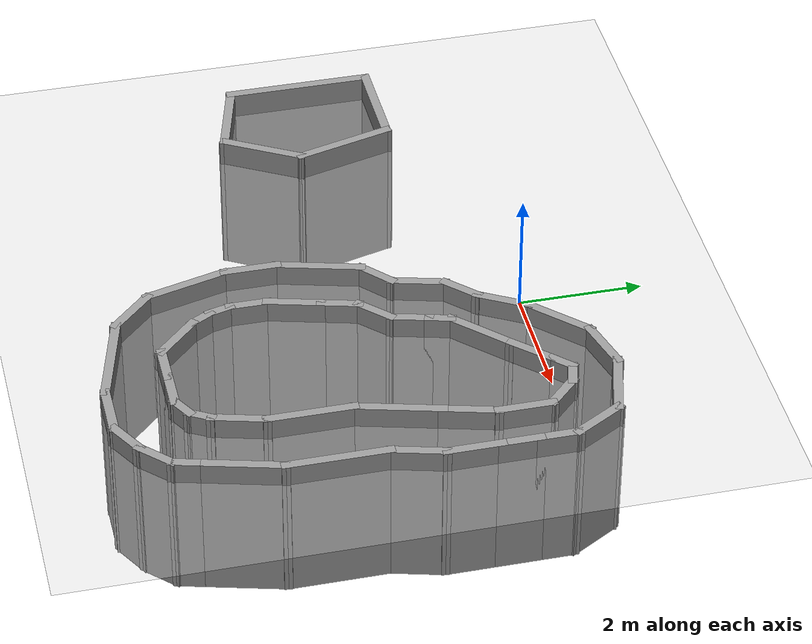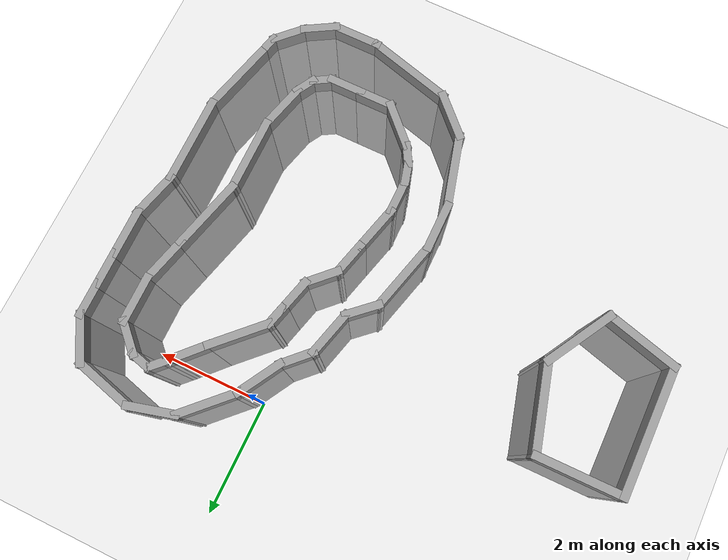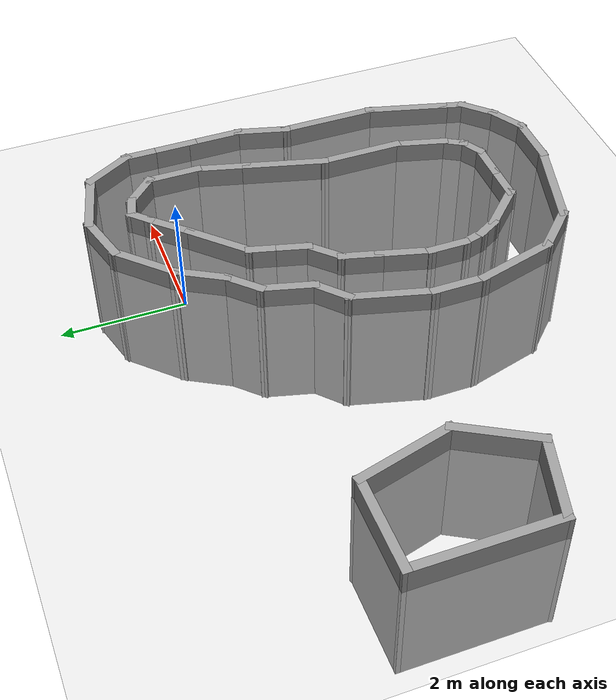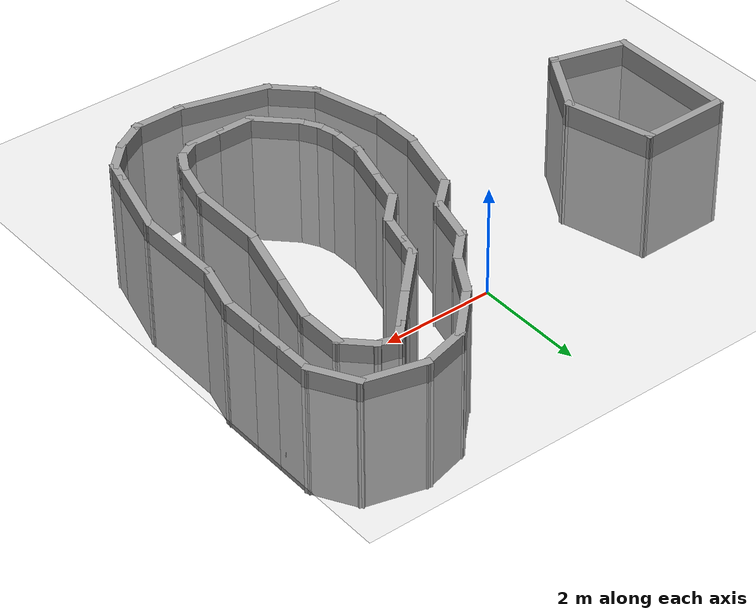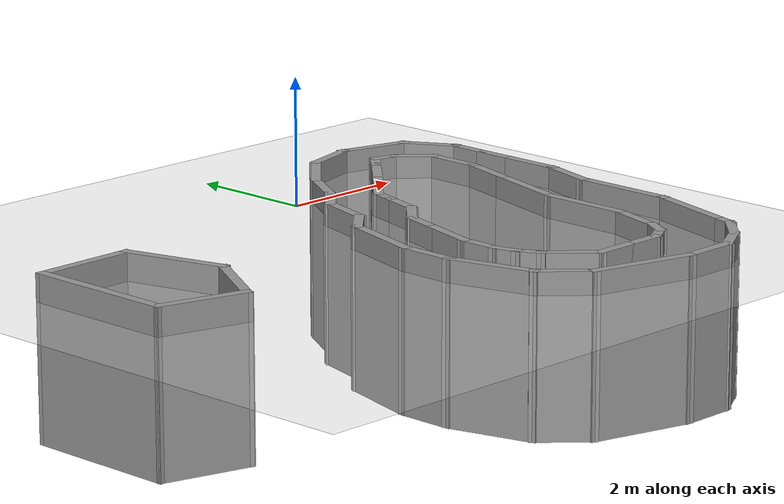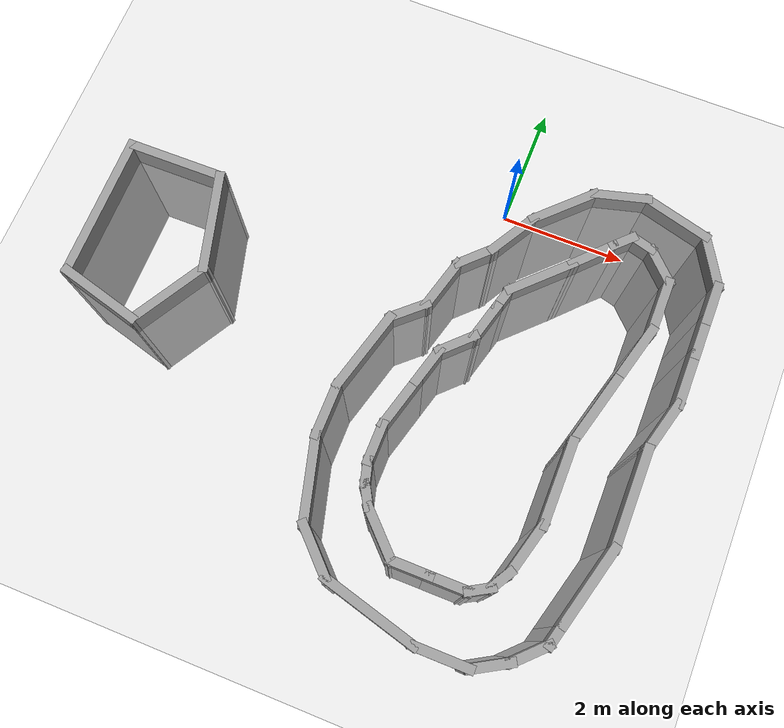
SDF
<sdf version="1.7">
 <world name="default">
  <light name="sun" type="directional">
   <pose>0 0 10 0 -0 0</pose>
   <diffuse>0.8 0.8 0.8 1</diffuse>
   <specular>0.2 0.2 0.2 1</specular>
   <attenuation>
    <range>1000</range>
    <constant>0.9</constant>
    <linear>0.01</linear>
    <quadratic>0.001</quadratic>
   </attenuation>
   <direction>-0.5 0.1 -0.9</direction>
   <spot><inner_angle>0</inner_angle><outer_angle>0</outer_angle><falloff>0</falloff></spot>
  </light>
  <model name="ground_plane">
   <static>1</static>
   <link name="link">
    <collision name="collision">
     <geometry><plane><normal>0 0 1</normal><size>100 100</size></plane></geometry>
     <surface>
      <contact><collide_bitmask>65535</collide_bitmask></contact>
      <friction><ode><mu>100</mu><mu2>50</mu2></ode></friction>
     </surface>
    </collision>
    <visual name="visual">
     <cast_shadows>0</cast_shadows>
     <geometry><plane><normal>0 0 1</normal><size>100 100</size></plane></geometry>
     <material>
      <script><uri>file://media/materials/scripts/gazebo.material</uri><name>Gazebo/Grey</name></script>
     </material>
    </visual>
   </link>
  </model>
  <gravity>0 0 -9.8</gravity>
  <magnetic_field>6e-06 2.3e-05 -4.2e-05</magnetic_field>
  <atmosphere type="adiabatic"/>
  <physics type="ode">
   <max_step_size>0.001</max_step_size>
   <real_time_factor>1</real_time_factor>
   <real_time_update_rate>1000</real_time_update_rate>
  </physics>
  <scene><ambient>0.4 0.4 0.4 1</ambient><background>0.7 0.7 0.7 1</background><shadows>1</shadows></scene>
  <spherical_coordinates>
   <surface_model>EARTH_WGS84</surface_model>
   <latitude_deg>0</latitude_deg>
   <longitude_deg>0</longitude_deg>
   <elevation>0</elevation>
   <heading_deg>0</heading_deg>
  </spherical_coordinates>
  <model name="mini_track">
   <pose>1.06079 -2.90935 -2.16918 0 -0 0</pose>
   <link name="Wall_0">
    <collision name="Wall_0_Collision">
     <geometry><box><size>1.5 0.15 2.5</size></box></geometry>
     <pose>0 0 1.25 0 -0 0</pose>
    </collision>
    <visual name="Wall_0_Visual">
     <pose>0 0 1.25 0 -0 0</pose>
     <geometry><box><size>1.5 0.15 2.5</size></box></geometry>
     <material>
      <script><uri>file://media/materials/scripts/gazebo.material</uri><name>Gazebo/Grey</name></script>
      <ambient>1 1 1 1</ambient>
     </material>
     <meta><layer>0</layer></meta>
    </visual>
    <pose>-2.30549 -0.10265 0 0 -0 -1.8326</pose>
   </link>
   <link name="Wall_10">
    <collision name="Wall_10_Collision">
     <geometry><box><size>1.5 0.15 2.5</size></box></geometry>
     <pose>0 0 1.25 0 -0 0</pose>
    </collision>
    <visual name="Wall_10_Visual">
     <pose>0 0 1.25 0 -0 0</pose>
     <geometry><box><size>1.5 0.15 2.5</size></box></geometry>
     <material>
      <script><uri>file://media/materials/scripts/gazebo.material</uri><name>Gazebo/Grey</name></script>
      <ambient>1 1 1 1</ambient>
     </material>
     <meta><layer>0</layer></meta>
    </visual>
    <pose>2.0749 -2.20946 0 0 -0 1.309</pose>
   </link>
   <link name="Wall_11">
    <collision name="Wall_11_Collision">
     <geometry><box><size>1.75 0.15 2.5</size></box></geometry>
     <pose>0 0 1.25 0 -0 0</pose>
    </collision>
    <visual name="Wall_11_Visual">
     <pose>0 0 1.25 0 -0 0</pose>
     <geometry><box><size>1.75 0.15 2.5</size></box></geometry>
     <material>
      <script><uri>file://media/materials/scripts/gazebo.material</uri><name>Gazebo/Grey</name></script>
      <ambient>1 1 1 1</ambient>
     </material>
     <meta><layer>0</layer></meta>
    </visual>
    <pose>2.2496 -0.757463 0 0 -0 1.5708</pose>
   </link>
   <link name="Wall_12">
    <collision name="Wall_12_Collision">
     <geometry><box><size>1 0.15 2.5</size></box></geometry>
     <pose>0 0 1.25 0 -0 0</pose>
    </collision>
    <visual name="Wall_12_Visual">
     <pose>0 0 1.25 0 -0 0</pose>
     <geometry><box><size>1 0.15 2.5</size></box></geometry>
     <material>
      <script><uri>file://media/materials/scripts/gazebo.material</uri><name>Gazebo/Grey</name></script>
      <ambient>1 1 1 1</ambient>
     </material>
     <meta><layer>0</layer></meta>
    </visual>
    <pose>2.3596 0.453056 0 0 -0 1.309</pose>
   </link>
   <link name="Wall_13">
    <collision name="Wall_13_Collision">
     <geometry><box><size>1 0.15 2.5</size></box></geometry>
     <pose>0 0 1.25 0 -0 0</pose>
    </collision>
    <visual name="Wall_13_Visual">
     <pose>0 0 1.25 0 -0 0</pose>
     <geometry><box><size>1 0.15 2.5</size></box></geometry>
     <material>
      <script><uri>file://media/materials/scripts/gazebo.material</uri><name>Gazebo/Grey</name></script>
      <ambient>1 1 1 1</ambient>
     </material>
     <meta><layer>0</layer></meta>
    </visual>
    <pose>2.4696 1.28857 0 0 -0 1.5708</pose>
   </link>
   <link name="Wall_14">
    <collision name="Wall_14_Collision">
     <geometry><box><size>0.75 0.15 2.5</size></box></geometry>
     <pose>0 0 1.25 0 -0 0</pose>
    </collision>
    <visual name="Wall_14_Visual">
     <pose>0 0 1.25 0 -0 0</pose>
     <geometry><box><size>0.75 0.15 2.5</size></box></geometry>
     <material>
      <script><uri>file://media/materials/scripts/gazebo.material</uri><name>Gazebo/Grey</name></script>
      <ambient>1 1 1 1</ambient>
     </material>
     <meta><layer>0</layer></meta>
    </visual>
    <pose>2.4696 2.01357 0 0 -0 1.5708</pose>
   </link>
   <link name="Wall_15">
    <collision name="Wall_15_Collision">
     <geometry><box><size>0.75 0.15 2.5</size></box></geometry>
     <pose>0 0 1.25 0 -0 0</pose>
    </collision>
    <visual name="Wall_15_Visual">
     <pose>0 0 1.25 0 -0 0</pose>
     <geometry><box><size>0.75 0.15 2.5</size></box></geometry>
     <material>
      <script><uri>file://media/materials/scripts/gazebo.material</uri><name>Gazebo/Grey</name></script>
      <ambient>1 1 1 1</ambient>
     </material>
     <meta><layer>0</layer></meta>
    </visual>
    <pose>2.4696 2.61357 0 0 -0 1.5708</pose>
   </link>
   <link name="Wall_16">
    <collision name="Wall_16_Collision">
     <geometry><box><size>1 0.15 2.5</size></box></geometry>
     <pose>0 0 1.25 0 -0 0</pose>
    </collision>
    <visual name="Wall_16_Visual">
     <pose>0 0 1.25 0 -0 0</pose>
     <geometry><box><size>1 0.15 2.5</size></box></geometry>
     <material>
      <script><uri>file://media/materials/scripts/gazebo.material</uri><name>Gazebo/Grey</name></script>
      <ambient>1 1 1 1</ambient>
     </material>
     <meta><layer>0</layer></meta>
    </visual>
    <pose>2.2571 3.28164 0 0 -0 2.0944</pose>
   </link>
   <link name="Wall_17">
    <collision name="Wall_17_Collision">
     <geometry><box><size>1.25 0.15 2.5</size></box></geometry>
     <pose>0 0 1.25 0 -0 0</pose>
    </collision>
    <visual name="Wall_17_Visual">
     <pose>0 0 1.25 0 -0 0</pose>
     <geometry><box><size>1.25 0.15 2.5</size></box></geometry>
     <material>
      <script><uri>file://media/materials/scripts/gazebo.material</uri><name>Gazebo/Grey</name></script>
      <ambient>1 1 1 1</ambient>
     </material>
     <meta><layer>0</layer></meta>
    </visual>
    <pose>1.51334 3.79205 0 0 -0 2.87979</pose>
   </link>
   <link name="Wall_18">
    <collision name="Wall_18_Collision">
     <geometry><box><size>1 0.15 2.5</size></box></geometry>
     <pose>0 0 1.25 0 -0 0</pose>
    </collision>
    <visual name="Wall_18_Visual">
     <pose>0 0 1.25 0 -0 0</pose>
     <geometry><box><size>1 0.15 2.5</size></box></geometry>
     <material>
      <script><uri>file://media/materials/scripts/gazebo.material</uri><name>Gazebo/Grey</name></script>
      <ambient>1 1 1 1</ambient>
     </material>
     <meta><layer>0</layer></meta>
    </visual>
    <pose>0.571563 3.8244 0 0 -0 -2.87979</pose>
   </link>
   <link name="Wall_19">
    <collision name="Wall_19_Collision">
     <geometry><box><size>1.25 0.15 2.5</size></box></geometry>
     <pose>0 0 1.25 0 -0 0</pose>
    </collision>
    <visual name="Wall_19_Visual">
     <pose>0 0 1.25 0 -0 0</pose>
     <geometry><box><size>1.25 0.15 2.5</size></box></geometry>
     <material>
      <script><uri>file://media/materials/scripts/gazebo.material</uri><name>Gazebo/Grey</name></script>
      <ambient>1 1 1 1</ambient>
     </material>
     <meta><layer>0</layer></meta>
    </visual>
    <pose>-0.227864 3.32549 0 0 -0 -2.35619</pose>
   </link>
   <link name="Wall_2">
    <collision name="Wall_2_Collision">
     <geometry><box><size>1 0.15 2.5</size></box></geometry>
     <pose>0 0 1.25 0 -0 0</pose>
    </collision>
    <visual name="Wall_2_Visual">
     <pose>0 0 1.25 0 -0 0</pose>
     <geometry><box><size>1 0.15 2.5</size></box></geometry>
     <material>
      <script><uri>file://media/materials/scripts/gazebo.material</uri><name>Gazebo/Grey</name></script>
      <ambient>1 1 1 1</ambient>
     </material>
     <meta><layer>0</layer></meta>
    </visual>
    <pose>-2.4802 -1.17965 0 0 -0 -1.5708</pose>
   </link>
   <link name="Wall_20">
    <collision name="Wall_20_Collision">
     <geometry><box><size>1 0.15 2.5</size></box></geometry>
     <pose>0 0 1.25 0 -0 0</pose>
    </collision>
    <visual name="Wall_20_Visual">
     <pose>0 0 1.25 0 -0 0</pose>
     <geometry><box><size>1 0.15 2.5</size></box></geometry>
     <material>
      <script><uri>file://media/materials/scripts/gazebo.material</uri><name>Gazebo/Grey</name></script>
      <ambient>1 1 1 1</ambient>
     </material>
     <meta><layer>0</layer></meta>
    </visual>
    <pose>-0.829273 2.56852 0 0 -0 -2.0944</pose>
   </link>
   <link name="Wall_21">
    <collision name="Wall_21_Collision">
     <geometry><box><size>0.75 0.15 2.5</size></box></geometry>
     <pose>0 0 1.25 0 -0 0</pose>
    </collision>
    <visual name="Wall_21_Visual">
     <pose>0 0 1.25 0 -0 0</pose>
     <geometry><box><size>0.75 0.15 2.5</size></box></geometry>
     <material>
      <script><uri>file://media/materials/scripts/gazebo.material</uri><name>Gazebo/Grey</name></script>
      <ambient>1 1 1 1</ambient>
     </material>
     <meta><layer>0</layer></meta>
    </visual>
    <pose>-1.25391 1.98833 0 0 -0 -2.35619</pose>
   </link>
   <link name="Wall_22">
    <collision name="Wall_22_Collision">
     <geometry><box><size>1 0.15 2.5</size></box></geometry>
     <pose>0 0 1.25 0 -0 0</pose>
    </collision>
    <visual name="Wall_22_Visual">
     <pose>0 0 1.25 0 -0 0</pose>
     <geometry><box><size>1 0.15 2.5</size></box></geometry>
     <material>
      <script><uri>file://media/materials/scripts/gazebo.material</uri><name>Gazebo/Grey</name></script>
      <ambient>1 1 1 1</ambient>
     </material>
     <meta><layer>0</layer></meta>
    </visual>
    <pose>-1.57604 1.36568 0 0 -0 -1.8326</pose>
   </link>
   <link name="Wall_23">
    <collision name="Wall_23_Collision">
     <geometry><box><size>0.752072 0.15 2.5</size></box></geometry>
     <pose>0 0 1.25 0 -0 0</pose>
    </collision>
    <visual name="Wall_23_Visual">
     <pose>0 0 1.25 0 -0 0</pose>
     <geometry><box><size>0.752072 0.15 2.5</size></box></geometry>
     <material>
      <script><uri>file://media/materials/scripts/gazebo.material</uri><name>Gazebo/Grey</name></script>
      <ambient>1 1 1 1</ambient>
     </material>
     <meta><layer>0</layer></meta>
    </visual>
    <pose>-1.90841 0.752255 0 0 -0 -2.40195</pose>
   </link>
   <link name="Wall_25">
    <collision name="Wall_25_Collision">
     <geometry><box><size>1.25 0.15 2.5</size></box></geometry>
     <pose>0 0 1.25 0 -0 0</pose>
    </collision>
    <visual name="Wall_25_Visual">
     <pose>0 0 1.25 0 -0 0</pose>
     <geometry><box><size>1.25 0.15 2.5</size></box></geometry>
     <material>
      <script><uri>file://media/materials/scripts/gazebo.material</uri><name>Gazebo/Grey</name></script>
      <ambient>1 1 1 1</ambient>
     </material>
     <meta><layer>0</layer></meta>
    </visual>
    <pose>-0.16776 2.04957 0 0 -0 -2.35619</pose>
   </link>
   <link name="Wall_26">
    <collision name="Wall_26_Collision">
     <geometry><box><size>0.5 0.15 2.5</size></box></geometry>
     <pose>0 0 1.25 0 -0 0</pose>
    </collision>
    <visual name="Wall_26_Visual">
     <pose>0 0 1.25 0 -0 0</pose>
     <geometry><box><size>0.5 0.15 2.5</size></box></geometry>
     <material>
      <script><uri>file://media/materials/scripts/gazebo.material</uri><name>Gazebo/Grey</name></script>
      <ambient>1 1 1 1</ambient>
     </material>
     <meta><layer>0</layer></meta>
    </visual>
    <pose>-0.601962 1.49163 0 0 -0 -1.8326</pose>
   </link>
   <link name="Wall_27">
    <collision name="Wall_27_Collision">
     <geometry><box><size>0.75 0.15 2.5</size></box></geometry>
     <pose>0 0 1.25 0 -0 0</pose>
    </collision>
    <visual name="Wall_27_Visual">
     <pose>0 0 1.25 0 -0 0</pose>
     <geometry><box><size>0.75 0.15 2.5</size></box></geometry>
     <material>
      <script><uri>file://media/materials/scripts/gazebo.material</uri><name>Gazebo/Grey</name></script>
      <ambient>1 1 1 1</ambient>
     </material>
     <meta><layer>0</layer></meta>
    </visual>
    <pose>-0.724901 1.03282 0 0 -0 -1.8326</pose>
   </link>
   <link name="Wall_28">
    <collision name="Wall_28_Collision">
     <geometry><box><size>0.75 0.15 2.5</size></box></geometry>
     <pose>0 0 1.25 0 -0 0</pose>
    </collision>
    <visual name="Wall_28_Visual">
     <pose>0 0 1.25 0 -0 0</pose>
     <geometry><box><size>0.75 0.15 2.5</size></box></geometry>
     <material>
      <script><uri>file://media/materials/scripts/gazebo.material</uri><name>Gazebo/Grey</name></script>
      <ambient>1 1 1 1</ambient>
     </material>
     <meta><layer>0</layer></meta>
    </visual>
    <pose>-1.01468 0.530905 0 0 -0 -2.35619</pose>
   </link>
   <link name="Wall_29">
    <collision name="Wall_29_Collision">
     <geometry><box><size>0.75 0.15 2.5</size></box></geometry>
     <pose>0 0 1.25 0 -0 0</pose>
    </collision>
    <visual name="Wall_29_Visual">
     <pose>0 0 1.25 0 -0 0</pose>
     <geometry><box><size>0.75 0.15 2.5</size></box></geometry>
     <material>
      <script><uri>file://media/materials/scripts/gazebo.material</uri><name>Gazebo/Grey</name></script>
      <ambient>1 1 1 1</ambient>
     </material>
     <meta><layer>0</layer></meta>
    </visual>
    <pose>-1.30446 0.028995 0 0 -0 -1.8326</pose>
   </link>
   <link name="Wall_3">
    <collision name="Wall_3_Collision">
     <geometry><box><size>1.5 0.15 2.5</size></box></geometry>
     <pose>0 0 1.25 0 -0 0</pose>
    </collision>
    <visual name="Wall_3_Visual">
     <pose>0 0 1.25 0 -0 0</pose>
     <geometry><box><size>1.5 0.15 2.5</size></box></geometry>
     <material>
      <script><uri>file://media/materials/scripts/gazebo.material</uri><name>Gazebo/Grey</name></script>
      <ambient>1 1 1 1</ambient>
     </material>
     <meta><layer>0</layer></meta>
    </visual>
    <pose>-2.30549 -2.25665 0 0 -0 -1.309</pose>
   </link>
   <link name="Wall_30">
    <collision name="Wall_30_Collision">
     <geometry><box><size>1 0.15 2.5</size></box></geometry>
     <pose>0 0 1.25 0 -0 0</pose>
    </collision>
    <visual name="Wall_30_Visual">
     <pose>0 0 1.25 0 -0 0</pose>
     <geometry><box><size>1 0.15 2.5</size></box></geometry>
     <material>
      <script><uri>file://media/materials/scripts/gazebo.material</uri><name>Gazebo/Grey</name></script>
      <ambient>1 1 1 1</ambient>
     </material>
     <meta><layer>0</layer></meta>
    </visual>
    <pose>-1.4921 -0.671301 0 0 -0 -1.8326</pose>
   </link>
   <link name="Wall_31">
    <collision name="Wall_31_Collision">
     <geometry><box><size>0.75 0.15 2.5</size></box></geometry>
     <pose>0 0 1.25 0 -0 0</pose>
    </collision>
    <visual name="Wall_31_Visual">
     <pose>0 0 1.25 0 -0 0</pose>
     <geometry><box><size>0.75 0.15 2.5</size></box></geometry>
     <material>
      <script><uri>file://media/materials/scripts/gazebo.material</uri><name>Gazebo/Grey</name></script>
      <ambient>1 1 1 1</ambient>
     </material>
     <meta><layer>0</layer></meta>
    </visual>
    <pose>-1.6021 -1.38182 0 0 -0 -1.5708</pose>
   </link>
   <link name="Wall_32">
    <collision name="Wall_32_Collision">
     <geometry><box><size>0.5 0.15 2.5</size></box></geometry>
     <pose>0 0 1.25 0 -0 0</pose>
    </collision>
    <visual name="Wall_32_Visual">
     <pose>0 0 1.25 0 -0 0</pose>
     <geometry><box><size>0.5 0.15 2.5</size></box></geometry>
     <material>
      <script><uri>file://media/materials/scripts/gazebo.material</uri><name>Gazebo/Grey</name></script>
      <ambient>1 1 1 1</ambient>
     </material>
     <meta><layer>0</layer></meta>
    </visual>
    <pose>-1.5568 -1.85086 0 0 -0 -1.309</pose>
   </link>
   <link name="Wall_33">
    <collision name="Wall_33_Collision">
     <geometry><box><size>0.5 0.15 2.5</size></box></geometry>
     <pose>0 0 1.25 0 -0 0</pose>
    </collision>
    <visual name="Wall_33_Visual">
     <pose>0 0 1.25 0 -0 0</pose>
     <geometry><box><size>0.5 0.15 2.5</size></box></geometry>
     <material>
      <script><uri>file://media/materials/scripts/gazebo.material</uri><name>Gazebo/Grey</name></script>
      <ambient>1 1 1 1</ambient>
     </material>
     <meta><layer>0</layer></meta>
    </visual>
    <pose>-1.42401 -2.17145 0 0 -0 -1.0472</pose>
   </link>
   <link name="Wall_34">
    <collision name="Wall_34_Collision">
     <geometry><box><size>1 0.15 2.5</size></box></geometry>
     <pose>0 0 1.25 0 -0 0</pose>
    </collision>
    <visual name="Wall_34_Visual">
     <pose>0 0 1.25 0 -0 0</pose>
     <geometry><box><size>1 0.15 2.5</size></box></geometry>
     <material>
      <script><uri>file://media/materials/scripts/gazebo.material</uri><name>Gazebo/Grey</name></script>
      <ambient>1 1 1 1</ambient>
     </material>
     <meta><layer>0</layer></meta>
    </visual>
    <pose>-1.03599 -2.62352 0 0 -0 -0.785398</pose>
   </link>
   <link name="Wall_35">
    <collision name="Wall_35_Collision">
     <geometry><box><size>0.75 0.15 2.5</size></box></geometry>
     <pose>0 0 1.25 0 -0 0</pose>
    </collision>
    <visual name="Wall_35_Visual">
     <pose>0 0 1.25 0 -0 0</pose>
     <geometry><box><size>0.75 0.15 2.5</size></box></geometry>
     <material>
      <script><uri>file://media/materials/scripts/gazebo.material</uri><name>Gazebo/Grey</name></script>
      <ambient>1 1 1 1</ambient>
     </material>
     <meta><layer>0</layer></meta>
    </visual>
    <pose>-0.435471 -2.92404 0 0 -0 0</pose>
   </link>
   <link name="Wall_36">
    <collision name="Wall_36_Collision">
     <geometry><box><size>0.75 0.15 2.5</size></box></geometry>
     <pose>0 0 1.25 0 -0 0</pose>
    </collision>
    <visual name="Wall_36_Visual">
     <pose>0 0 1.25 0 -0 0</pose>
     <geometry><box><size>0.75 0.15 2.5</size></box></geometry>
     <material>
      <script><uri>file://media/materials/scripts/gazebo.material</uri><name>Gazebo/Grey</name></script>
      <ambient>1 1 1 1</ambient>
     </material>
     <meta><layer>0</layer></meta>
    </visual>
    <pose>0.164529 -2.92404 0 0 -0 0</pose>
   </link>
   <link name="Wall_37">
    <collision name="Wall_37_Collision">
     <geometry><box><size>0.5 0.15 2.5</size></box></geometry>
     <pose>0 0 1.25 0 -0 0</pose>
    </collision>
    <visual name="Wall_37_Visual">
     <pose>0 0 1.25 0 -0 0</pose>
     <geometry><box><size>0.5 0.15 2.5</size></box></geometry>
     <material>
      <script><uri>file://media/materials/scripts/gazebo.material</uri><name>Gazebo/Grey</name></script>
      <ambient>1 1 1 1</ambient>
     </material>
     <meta><layer>0</layer></meta>
    </visual>
    <pose>0.616084 -2.83654 0 0 -0 0.523599</pose>
   </link>
   <link name="Wall_38">
    <collision name="Wall_38_Collision">
     <geometry><box><size>0.5 0.15 2.5</size></box></geometry>
     <pose>0 0 1.25 0 -0 0</pose>
    </collision>
    <visual name="Wall_38_Visual">
     <pose>0 0 1.25 0 -0 0</pose>
     <geometry><box><size>0.5 0.15 2.5</size></box></geometry>
     <material>
      <script><uri>file://media/materials/scripts/gazebo.material</uri><name>Gazebo/Grey</name></script>
      <ambient>1 1 1 1</ambient>
     </material>
     <meta><layer>0</layer></meta>
    </visual>
    <pose>0.855138 -2.59749 0 0 -0 1.0472</pose>
   </link>
   <link name="Wall_39">
    <collision name="Wall_39_Collision">
     <geometry><box><size>1 0.15 2.5</size></box></geometry>
     <pose>0 0 1.25 0 -0 0</pose>
    </collision>
    <visual name="Wall_39_Visual">
     <pose>0 0 1.25 0 -0 0</pose>
     <geometry><box><size>1 0.15 2.5</size></box></geometry>
     <material>
      <script><uri>file://media/materials/scripts/gazebo.material</uri><name>Gazebo/Grey</name></script>
      <ambient>1 1 1 1</ambient>
     </material>
     <meta><layer>0</layer></meta>
    </visual>
    <pose>1.05264 -2.03542 0 0 -0 1.309</pose>
   </link>
   <link name="Wall_4">
    <collision name="Wall_4_Collision">
     <geometry><box><size>1 0.15 2.5</size></box></geometry>
     <pose>0 0 1.25 0 -0 0</pose>
    </collision>
    <visual name="Wall_4_Visual">
     <pose>0 0 1.25 0 -0 0</pose>
     <geometry><box><size>1 0.15 2.5</size></box></geometry>
     <material>
      <script><uri>file://media/materials/scripts/gazebo.material</uri><name>Gazebo/Grey</name></script>
      <ambient>1 1 1 1</ambient>
     </material>
     <meta><layer>0</layer></meta>
    </visual>
    <pose>-1.83027 -3.20917 0 0 -0 -0.785398</pose>
   </link>
   <link name="Wall_40">
    <collision name="Wall_40_Collision">
     <geometry><box><size>1.5 0.15 2.5</size></box></geometry>
     <pose>0 0 1.25 0 -0 0</pose>
    </collision>
    <visual name="Wall_40_Visual">
     <pose>0 0 1.25 0 -0 0</pose>
     <geometry><box><size>1.5 0.15 2.5</size></box></geometry>
     <material>
      <script><uri>file://media/materials/scripts/gazebo.material</uri><name>Gazebo/Grey</name></script>
      <ambient>1 1 1 1</ambient>
     </material>
     <meta><layer>0</layer></meta>
    </visual>
    <pose>1.16263 -0.949897 0 0 -0 1.5708</pose>
   </link>
   <link name="Wall_41">
    <collision name="Wall_41_Collision">
     <geometry><box><size>1.5 0.15 2.5</size></box></geometry>
     <pose>0 0 1.25 0 -0 0</pose>
    </collision>
    <visual name="Wall_41_Visual">
     <pose>0 0 1.25 0 -0 0</pose>
     <geometry><box><size>1.5 0.15 2.5</size></box></geometry>
     <material>
      <script><uri>file://media/materials/scripts/gazebo.material</uri><name>Gazebo/Grey</name></script>
      <ambient>1 1 1 1</ambient>
     </material>
     <meta><layer>0</layer></meta>
    </visual>
    <pose>1.33734 0.377103 0 0 -0 1.309</pose>
   </link>
   <link name="Wall_42">
    <collision name="Wall_42_Collision">
     <geometry><box><size>1 0.15 2.5</size></box></geometry>
     <pose>0 0 1.25 0 -0 0</pose>
    </collision>
    <visual name="Wall_42_Visual">
     <pose>0 0 1.25 0 -0 0</pose>
     <geometry><box><size>1 0.15 2.5</size></box></geometry>
     <material>
      <script><uri>file://media/materials/scripts/gazebo.material</uri><name>Gazebo/Grey</name></script>
      <ambient>1 1 1 1</ambient>
     </material>
     <meta><layer>0</layer></meta>
    </visual>
    <pose>1.62204 1.43962 0 0 -0 1.309</pose>
   </link>
   <link name="Wall_43">
    <collision name="Wall_43_Collision">
     <geometry><box><size>1 0.15 2.5</size></box></geometry>
     <pose>0 0 1.25 0 -0 0</pose>
    </collision>
    <visual name="Wall_43_Visual">
     <pose>0 0 1.25 0 -0 0</pose>
     <geometry><box><size>1 0.15 2.5</size></box></geometry>
     <material>
      <script><uri>file://media/materials/scripts/gazebo.material</uri><name>Gazebo/Grey</name></script>
      <ambient>1 1 1 1</ambient>
     </material>
     <meta><layer>0</layer></meta>
    </visual>
    <pose>1.73204 2.27514 0 0 -0 1.5708</pose>
   </link>
   <link name="Wall_44">
    <collision name="Wall_44_Collision">
     <geometry><box><size>0.75 0.15 2.5</size></box></geometry>
     <pose>0 0 1.25 0 -0 0</pose>
    </collision>
    <visual name="Wall_44_Visual">
     <pose>0 0 1.25 0 -0 0</pose>
     <geometry><box><size>0.75 0.15 2.5</size></box></geometry>
     <material>
      <script><uri>file://media/materials/scripts/gazebo.material</uri><name>Gazebo/Grey</name></script>
      <ambient>1 1 1 1</ambient>
     </material>
     <meta><layer>0</layer></meta>
    </visual>
    <pose>1.5199 2.91227 0 0 -0 2.35619</pose>
   </link>
   <link name="Wall_45">
    <collision name="Wall_45_Collision">
     <geometry><box><size>0.5 0.15 2.5</size></box></geometry>
     <pose>0 0 1.25 0 -0 0</pose>
    </collision>
    <visual name="Wall_45_Visual">
     <pose>0 0 1.25 0 -0 0</pose>
     <geometry><box><size>0.5 0.15 2.5</size></box></geometry>
     <material>
      <script><uri>file://media/materials/scripts/gazebo.material</uri><name>Gazebo/Grey</name></script>
      <ambient>1 1 1 1</ambient>
     </material>
     <meta><layer>0</layer></meta>
    </visual>
    <pose>1.13874 3.1697 0 0 -0 2.87979</pose>
   </link>
   <link name="Wall_46">
    <collision name="Wall_46_Collision">
     <geometry><box><size>0.5 0.15 2.5</size></box></geometry>
     <pose>0 0 1.25 0 -0 0</pose>
    </collision>
    <visual name="Wall_46_Visual">
     <pose>0 0 1.25 0 -0 0</pose>
     <geometry><box><size>0.5 0.15 2.5</size></box></geometry>
     <material>
      <script><uri>file://media/materials/scripts/gazebo.material</uri><name>Gazebo/Grey</name></script>
      <ambient>1 1 1 1</ambient>
     </material>
     <meta><layer>0</layer></meta>
    </visual>
    <pose>0.845954 3.09125 0 0 -0 -2.35619</pose>
   </link>
   <link name="Wall_47">
    <collision name="Wall_47_Collision">
     <geometry><box><size>0.878645 0.15 2.5</size></box></geometry>
     <pose>0 0 1.25 0 -0 0</pose>
    </collision>
    <visual name="Wall_47_Visual">
     <pose>0 0 1.25 0 -0 0</pose>
     <geometry><box><size>0.878645 0.15 2.5</size></box></geometry>
     <material>
      <script><uri>file://media/materials/scripts/gazebo.material</uri><name>Gazebo/Grey</name></script>
      <ambient>1 1 1 1</ambient>
     </material>
     <meta><layer>0</layer></meta>
    </visual>
    <pose>0.47168 2.70299 0 0 -0 -2.32906</pose>
   </link>
   <link name="Wall_5">
    <collision name="Wall_5_Collision">
     <geometry><box><size>1.75 0.15 2.5</size></box></geometry>
     <pose>0 0 1.25 0 -0 0</pose>
    </collision>
    <visual name="Wall_5_Visual">
     <pose>0 0 1.25 0 -0 0</pose>
     <geometry><box><size>1.75 0.15 2.5</size></box></geometry>
     <material>
      <script><uri>file://media/materials/scripts/gazebo.material</uri><name>Gazebo/Grey</name></script>
      <ambient>1 1 1 1</ambient>
     </material>
     <meta><layer>0</layer></meta>
    </visual>
    <pose>-0.757009 -3.71675 0 0 -0 -0.261799</pose>
   </link>
   <link name="Wall_6">
    <collision name="Wall_6_Collision">
     <geometry><box><size>1 0.15 2.5</size></box></geometry>
     <pose>0 0 1.25 0 -0 0</pose>
    </collision>
    <visual name="Wall_6_Visual">
     <pose>0 0 1.25 0 -0 0</pose>
     <geometry><box><size>1 0.15 2.5</size></box></geometry>
     <material>
      <script><uri>file://media/materials/scripts/gazebo.material</uri><name>Gazebo/Grey</name></script>
      <ambient>1 1 1 1</ambient>
     </material>
     <meta><layer>0</layer></meta>
    </visual>
    <pose>0.440732 -3.9238 0 0 -0 0</pose>
   </link>
   <link name="Wall_7">
    <collision name="Wall_7_Collision">
     <geometry><box><size>0.75 0.15 2.5</size></box></geometry>
     <pose>0 0 1.25 0 -0 0</pose>
    </collision>
    <visual name="Wall_7_Visual">
     <pose>0 0 1.25 0 -0 0</pose>
     <geometry><box><size>0.75 0.15 2.5</size></box></geometry>
     <material>
      <script><uri>file://media/materials/scripts/gazebo.material</uri><name>Gazebo/Grey</name></script>
      <ambient>1 1 1 1</ambient>
     </material>
     <meta><layer>0</layer></meta>
    </visual>
    <pose>1.12554 -3.7738 0 0 -0 0.523599</pose>
   </link>
   <link name="Wall_8">
    <collision name="Wall_8_Collision">
     <geometry><box><size>0.75 0.15 2.5</size></box></geometry>
     <pose>0 0 1.25 0 -0 0</pose>
    </collision>
    <visual name="Wall_8_Visual">
     <pose>0 0 1.25 0 -0 0</pose>
     <geometry><box><size>0.75 0.15 2.5</size></box></geometry>
     <material>
      <script><uri>file://media/materials/scripts/gazebo.material</uri><name>Gazebo/Grey</name></script>
      <ambient>1 1 1 1</ambient>
     </material>
     <meta><layer>0</layer></meta>
    </visual>
    <pose>1.59748 -3.41167 0 0 -0 0.785398</pose>
   </link>
   <link name="Wall_9">
    <collision name="Wall_9_Collision">
     <geometry><box><size>0.5 0.15 2.5</size></box></geometry>
     <pose>0 0 1.25 0 -0 0</pose>
    </collision>
    <visual name="Wall_9_Visual">
     <pose>0 0 1.25 0 -0 0</pose>
     <geometry><box><size>0.5 0.15 2.5</size></box></geometry>
     <material>
      <script><uri>file://media/materials/scripts/gazebo.material</uri><name>Gazebo/Grey</name></script>
      <ambient>1 1 1 1</ambient>
     </material>
     <meta><layer>0</layer></meta>
    </visual>
    <pose>1.85491 -3.0305 0 0 -0 1.309</pose>
   </link>
   <static>1</static>
  </model>
  <model name="test2">
   <pose>-3.08093 -1.99093 -2.09231 0 -0 0</pose>
   <link name="Wall_2">
    <collision name="Wall_2_Collision">
     <geometry><box><size>2.5 0.15 2.5</size></box></geometry>
     <pose>0 0 1.25 0 -0 0</pose>
    </collision>
    <visual name="Wall_2_Visual">
     <pose>0 0 1.25 0 -0 0</pose>
     <geometry><box><size>2.5 0.15 2.5</size></box></geometry>
     <material>
      <script><uri>file://media/materials/scripts/gazebo.material</uri><name>Gazebo/Grey</name></script>
      <ambient>1 1 1 1</ambient>
     </material>
     <meta><layer>0</layer></meta>
    </visual>
    <pose>-2.98907 -0.364071 0 0 -0 -1.5708</pose>
   </link>
   <link name="Wall_3">
    <collision name="Wall_3_Collision">
     <geometry><box><size>1.5 0.15 2.5</size></box></geometry>
     <pose>0 0 1.25 0 -0 0</pose>
    </collision>
    <visual name="Wall_3_Visual">
     <pose>0 0 1.25 0 -0 0</pose>
     <geometry><box><size>1.5 0.15 2.5</size></box></geometry>
     <material>
      <script><uri>file://media/materials/scripts/gazebo.material</uri><name>Gazebo/Grey</name></script>
      <ambient>1 1 1 1</ambient>
     </material>
     <meta><layer>0</layer></meta>
    </visual>
    <pose>-2.33707 -1.71377 0 0 -0 -0.261799</pose>
   </link>
   <link name="Wall_4">
    <collision name="Wall_4_Collision">
     <geometry><box><size>1.5 0.15 2.5</size></box></geometry>
     <pose>0 0 1.25 0 -0 0</pose>
    </collision>
    <visual name="Wall_4_Visual">
     <pose>0 0 1.25 0 -0 0</pose>
     <geometry><box><size>1.5 0.15 2.5</size></box></geometry>
     <material>
      <script><uri>file://media/materials/scripts/gazebo.material</uri><name>Gazebo/Grey</name></script>
      <ambient>1 1 1 1</ambient>
     </material>
     <meta><layer>0</layer></meta>
    </visual>
    <pose>-1.34757 -1.30391 0 0 -0 1.0472</pose>
   </link>
   <link name="Wall_5">
    <collision name="Wall_5_Collision">
     <geometry><box><size>1.75 0.15 2.5</size></box></geometry>
     <pose>0 0 1.25 0 -0 0</pose>
    </collision>
    <visual name="Wall_5_Visual">
     <pose>0 0 1.25 0 -0 0</pose>
     <geometry><box><size>1.75 0.15 2.5</size></box></geometry>
     <material>
      <script><uri>file://media/materials/scripts/gazebo.material</uri><name>Gazebo/Grey</name></script>
      <ambient>1 1 1 1</ambient>
     </material>
     <meta><layer>0</layer></meta>
    </visual>
    <pose>-1.21713 0.053398 0 0 -0 1.8326</pose>
   </link>
   <link name="Wall_6">
    <collision name="Wall_6_Collision">
     <geometry><box><size>1.71496 0.15 2.5</size></box></geometry>
     <pose>0 0 1.25 0 -0 0</pose>
    </collision>
    <visual name="Wall_6_Visual">
     <pose>0 0 1.25 0 -0 0</pose>
     <geometry><box><size>1.71496 0.15 2.5</size></box></geometry>
     <material>
      <script><uri>file://media/materials/scripts/gazebo.material</uri><name>Gazebo/Grey</name></script>
      <ambient>1 1 1 1</ambient>
     </material>
     <meta><layer>0</layer></meta>
    </visual>
    <pose>-2.20663 0.818534 0 0 -0 -3.13187</pose>
   </link>
   <static>1</static>
  </model>
 </world>
</sdf>
